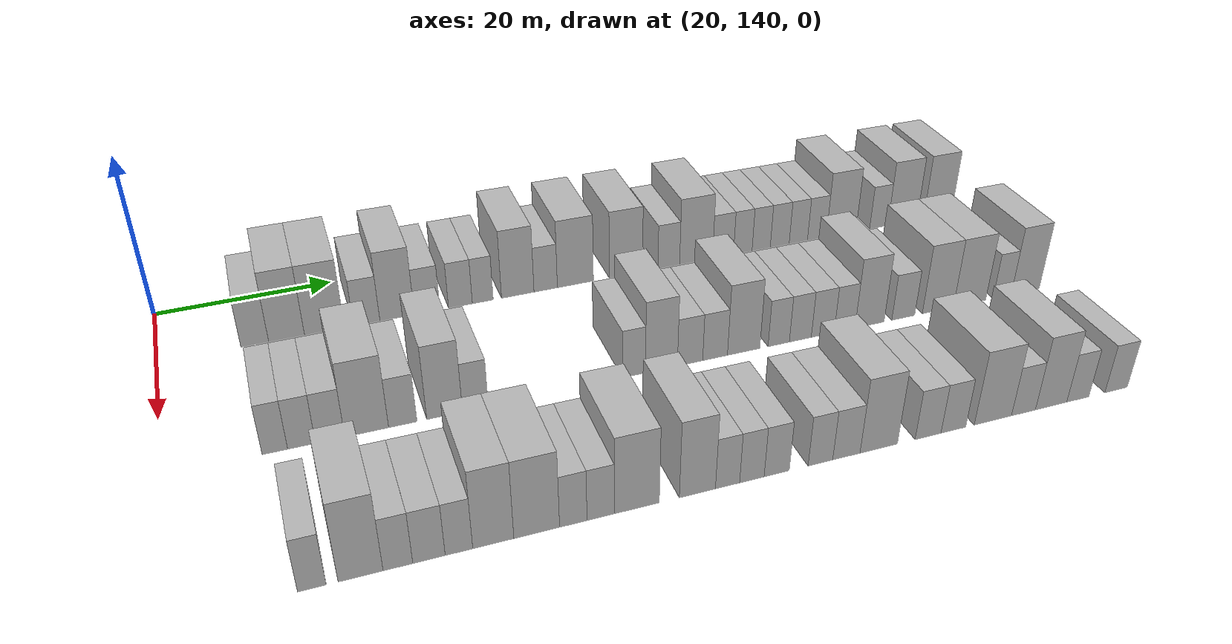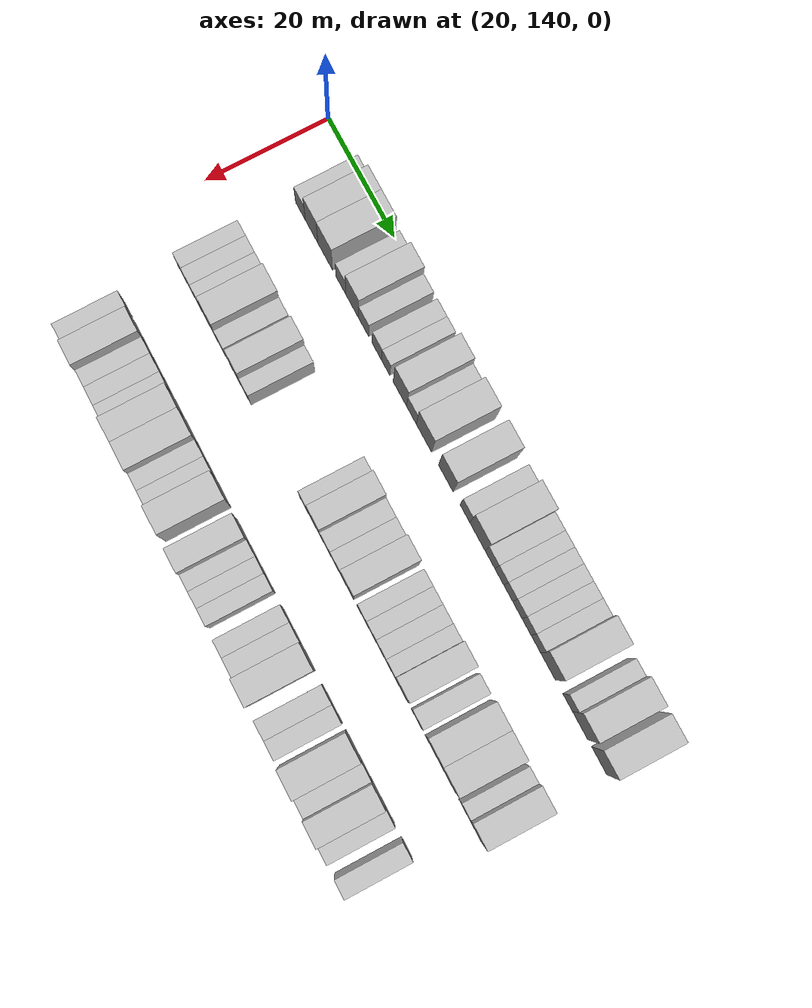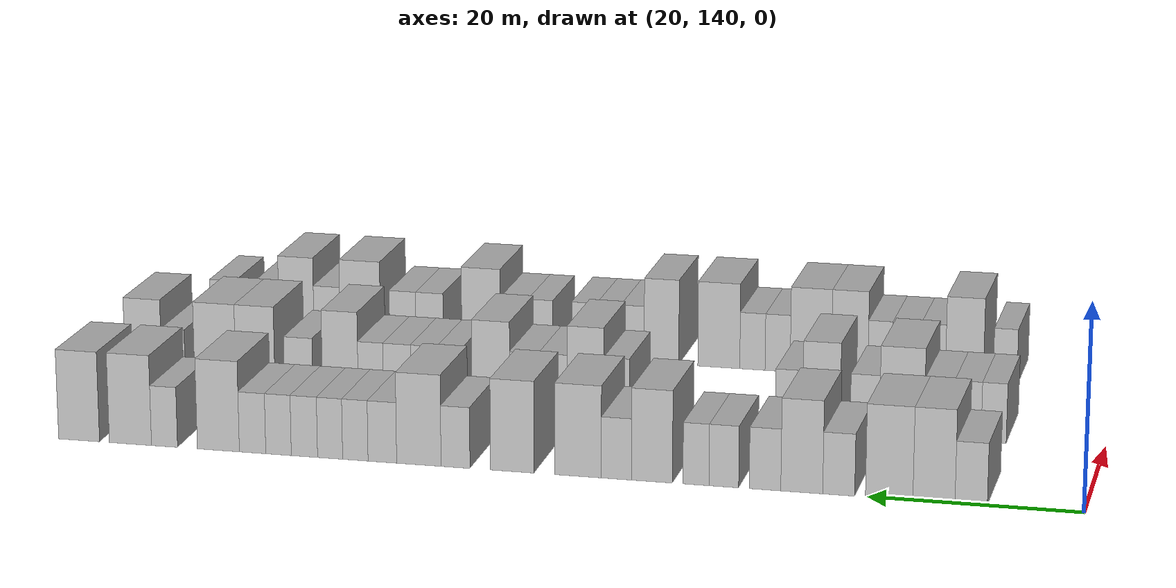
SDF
<sdf version="1.6">
 <world name="default">
  <model name="building_96">
   <static>1</static>
   <pose>25.0000 150.3777 0 0.000000 0.000000 0.000000</pose>
   <link name="link">
    <pose>0 0 3.00 0 0 0</pose>
    <collision name="collision"><geometry><box><size>10.0000 2.9793 6.0000</size></box></geometry></collision>
    <visual name="visual">
     <cast_shadows>0</cast_shadows>
     <geometry><box><size>10.0000 2.9793 6.0000</size></box></geometry>
     <material>
      <script>
       <uri>model://HANNAS_wall/materials/scripts</uri>
       <uri>model://HANNAS_wall/materials/textures</uri>
       <name>vrc/HANNAS_wall</name>
      </script>
     </material>
    </visual>
   </link>
  </model>
  <model name="building_97">
   <static>1</static>
   <pose>25.0000 153.8159 0 0.000000 0.000000 0.000000</pose>
   <link name="link">
    <pose>0 0 4.50 0 0 0</pose>
    <collision name="collision"><geometry><box><size>10.0000 3.8971 9.0000</size></box></geometry></collision>
    <visual name="visual">
     <cast_shadows>0</cast_shadows>
     <geometry><box><size>10.0000 3.8971 9.0000</size></box></geometry>
     <material>
      <script>
       <uri>model://HANNAS_wall/materials/scripts</uri>
       <uri>model://HANNAS_wall/materials/textures</uri>
       <name>vrc/HANNAS_wall</name>
      </script>
     </material>
    </visual>
   </link>
  </model>
  <model name="building_98">
   <static>1</static>
   <pose>25.0000 157.9704 0 0.000000 0.000000 0.000000</pose>
   <link name="link">
    <pose>0 0 4.50 0 0 0</pose>
    <collision name="collision"><geometry><box><size>10.0000 4.4120 9.0000</size></box></geometry></collision>
    <visual name="visual">
     <cast_shadows>0</cast_shadows>
     <geometry><box><size>10.0000 4.4120 9.0000</size></box></geometry>
     <material>
      <script>
       <uri>model://HANNAS_wall/materials/scripts</uri>
       <uri>model://HANNAS_wall/materials/textures</uri>
       <name>vrc/HANNAS_wall</name>
      </script>
     </material>
    </visual>
   </link>
  </model>
  <model name="building_99">
   <static>1</static>
   <pose>25.0000 162.6709 0 0.000000 0.000000 0.000000</pose>
   <link name="link">
    <pose>0 0 3.00 0 0 0</pose>
    <collision name="collision"><geometry><box><size>10.0000 2.9890 6.0000</size></box></geometry></collision>
    <visual name="visual">
     <cast_shadows>0</cast_shadows>
     <geometry><box><size>10.0000 2.9890 6.0000</size></box></geometry>
     <material>
      <script>
       <uri>model://HANNAS_wall/materials/scripts</uri>
       <uri>model://HANNAS_wall/materials/textures</uri>
       <name>vrc/HANNAS_wall</name>
      </script>
     </material>
    </visual>
   </link>
  </model>
  <model name="building_100">
   <static>1</static>
   <pose>25.0000 166.1352 0 0.000000 0.000000 0.000000</pose>
   <link name="link">
    <pose>0 0 4.50 0 0 0</pose>
    <collision name="collision"><geometry><box><size>10.0000 3.9394 9.0000</size></box></geometry></collision>
    <visual name="visual">
     <cast_shadows>0</cast_shadows>
     <geometry><box><size>10.0000 3.9394 9.0000</size></box></geometry>
     <material>
      <script>
       <uri>model://HANNAS_wall/materials/scripts</uri>
       <uri>model://HANNAS_wall/materials/textures</uri>
       <name>vrc/HANNAS_wall</name>
      </script>
     </material>
    </visual>
   </link>
  </model>
  <model name="building_101">
   <static>1</static>
   <pose>25.0000 169.5913 0 0.000000 0.000000 0.000000</pose>
   <link name="link">
    <pose>0 0 3.00 0 0 0</pose>
    <collision name="collision"><geometry><box><size>10.0000 2.9728 6.0000</size></box></geometry></collision>
    <visual name="visual">
     <cast_shadows>0</cast_shadows>
     <geometry><box><size>10.0000 2.9728 6.0000</size></box></geometry>
     <material>
      <script>
       <uri>model://HANNAS_wall/materials/scripts</uri>
       <uri>model://HANNAS_wall/materials/textures</uri>
       <name>vrc/HANNAS_wall</name>
      </script>
     </material>
    </visual>
   </link>
  </model>
  <model name="building_102">
   <static>1</static>
   <pose>25.0000 173.4811 0 0.000000 0.000000 0.000000</pose>
   <link name="link">
    <pose>0 0 3.00 0 0 0</pose>
    <collision name="collision"><geometry><box><size>10.0000 2.8069 6.0000</size></box></geometry></collision>
    <visual name="visual">
     <cast_shadows>0</cast_shadows>
     <geometry><box><size>10.0000 2.8069 6.0000</size></box></geometry>
     <material>
      <script>
       <uri>model://HANNAS_wall/materials/scripts</uri>
       <uri>model://HANNAS_wall/materials/textures</uri>
       <name>vrc/HANNAS_wall</name>
      </script>
     </material>
    </visual>
   </link>
  </model>
  <model name="building_103">
   <static>1</static>
   <pose>25.0000 176.1226 0 0.000000 0.000000 0.000000</pose>
   <link name="link">
    <pose>0 0 3.00 0 0 0</pose>
    <collision name="collision"><geometry><box><size>10.0000 2.4760 6.0000</size></box></geometry></collision>
    <visual name="visual">
     <cast_shadows>0</cast_shadows>
     <geometry><box><size>10.0000 2.4760 6.0000</size></box></geometry>
     <material>
      <script>
       <uri>model://HANNAS_wall/materials/scripts</uri>
       <uri>model://HANNAS_wall/materials/textures</uri>
       <name>vrc/HANNAS_wall</name>
      </script>
     </material>
    </visual>
   </link>
  </model>
  <model name="building_104">
   <static>1</static>
   <pose>25.0000 180.3261 0 0.000000 0.000000 0.000000</pose>
   <link name="link">
    <pose>0 0 4.50 0 0 0</pose>
    <collision name="collision"><geometry><box><size>10.0000 3.9310 9.0000</size></box></geometry></collision>
    <visual name="visual">
     <cast_shadows>0</cast_shadows>
     <geometry><box><size>10.0000 3.9310 9.0000</size></box></geometry>
     <material>
      <script>
       <uri>model://HANNAS_wall/materials/scripts</uri>
       <uri>model://HANNAS_wall/materials/textures</uri>
       <name>vrc/HANNAS_wall</name>
      </script>
     </material>
    </visual>
   </link>
  </model>
  <model name="building_105">
   <static>1</static>
   <pose>25.0000 183.7257 0 0.000000 0.000000 0.000000</pose>
   <link name="link">
    <pose>0 0 3.00 0 0 0</pose>
    <collision name="collision"><geometry><box><size>10.0000 2.8682 6.0000</size></box></geometry></collision>
    <visual name="visual">
     <cast_shadows>0</cast_shadows>
     <geometry><box><size>10.0000 2.8682 6.0000</size></box></geometry>
     <material>
      <script>
       <uri>model://HANNAS_wall/materials/scripts</uri>
       <uri>model://HANNAS_wall/materials/textures</uri>
       <name>vrc/HANNAS_wall</name>
      </script>
     </material>
    </visual>
   </link>
  </model>
  <model name="building_106">
   <static>1</static>
   <pose>25.0000 187.4045 0 0.000000 0.000000 0.000000</pose>
   <link name="link">
    <pose>0 0 4.50 0 0 0</pose>
    <collision name="collision"><geometry><box><size>10.0000 4.4895 9.0000</size></box></geometry></collision>
    <visual name="visual">
     <cast_shadows>0</cast_shadows>
     <geometry><box><size>10.0000 4.4895 9.0000</size></box></geometry>
     <material>
      <script>
       <uri>model://HANNAS_wall/materials/scripts</uri>
       <uri>model://HANNAS_wall/materials/textures</uri>
       <name>vrc/HANNAS_wall</name>
      </script>
     </material>
    </visual>
   </link>
  </model>
  <model name="building_107">
   <static>1</static>
   <pose>25.0000 193.7643 0 0.000000 0.000000 0.000000</pose>
   <link name="link">
    <pose>0 0 4.50 0 0 0</pose>
    <collision name="collision"><geometry><box><size>10.0000 4.2302 9.0000</size></box></geometry></collision>
    <visual name="visual">
     <cast_shadows>0</cast_shadows>
     <geometry><box><size>10.0000 4.2302 9.0000</size></box></geometry>
     <material>
      <script>
       <uri>model://HANNAS_wall/materials/scripts</uri>
       <uri>model://HANNAS_wall/materials/textures</uri>
       <name>vrc/HANNAS_wall</name>
      </script>
     </material>
    </visual>
   </link>
  </model>
  <model name="building_108">
   <static>1</static>
   <pose>25.0000 199.2917 0 0.000000 0.000000 0.000000</pose>
   <link name="link">
    <pose>0 0 3.00 0 0 0</pose>
    <collision name="collision"><geometry><box><size>10.0000 2.8246 6.0000</size></box></geometry></collision>
    <visual name="visual">
     <cast_shadows>0</cast_shadows>
     <geometry><box><size>10.0000 2.8246 6.0000</size></box></geometry>
     <material>
      <script>
       <uri>model://HANNAS_wall/materials/scripts</uri>
       <uri>model://HANNAS_wall/materials/textures</uri>
       <name>vrc/HANNAS_wall</name>
      </script>
     </material>
    </visual>
   </link>
  </model>
  <model name="building_109">
   <static>1</static>
   <pose>25.0000 202.8836 0 0.000000 0.000000 0.000000</pose>
   <link name="link">
    <pose>0 0 4.50 0 0 0</pose>
    <collision name="collision"><geometry><box><size>10.0000 4.3591 9.0000</size></box></geometry></collision>
    <visual name="visual">
     <cast_shadows>0</cast_shadows>
     <geometry><box><size>10.0000 4.3591 9.0000</size></box></geometry>
     <material>
      <script>
       <uri>model://HANNAS_wall/materials/scripts</uri>
       <uri>model://HANNAS_wall/materials/textures</uri>
       <name>vrc/HANNAS_wall</name>
      </script>
     </material>
    </visual>
   </link>
  </model>
  <model name="building_110">
   <static>1</static>
   <pose>25.0000 206.4705 0 0.000000 0.000000 0.000000</pose>
   <link name="link">
    <pose>0 0 3.00 0 0 0</pose>
    <collision name="collision"><geometry><box><size>10.0000 2.8148 6.0000</size></box></geometry></collision>
    <visual name="visual">
     <cast_shadows>0</cast_shadows>
     <geometry><box><size>10.0000 2.8148 6.0000</size></box></geometry>
     <material>
      <script>
       <uri>model://HANNAS_wall/materials/scripts</uri>
       <uri>model://HANNAS_wall/materials/textures</uri>
       <name>vrc/HANNAS_wall</name>
      </script>
     </material>
    </visual>
   </link>
  </model>
  <model name="building_111">
   <static>1</static>
   <pose>25.0000 209.1346 0 0.000000 0.000000 0.000000</pose>
   <link name="link">
    <pose>0 0 3.00 0 0 0</pose>
    <collision name="collision"><geometry><box><size>10.0000 2.5133 6.0000</size></box></geometry></collision>
    <visual name="visual">
     <cast_shadows>0</cast_shadows>
     <geometry><box><size>10.0000 2.5133 6.0000</size></box></geometry>
     <material>
      <script>
       <uri>model://HANNAS_wall/materials/scripts</uri>
       <uri>model://HANNAS_wall/materials/textures</uri>
       <name>vrc/HANNAS_wall</name>
      </script>
     </material>
    </visual>
   </link>
  </model>
  <model name="building_112">
   <static>1</static>
   <pose>25.0000 211.6346 0 0.000000 0.000000 0.000000</pose>
   <link name="link">
    <pose>0 0 3.00 0 0 0</pose>
    <collision name="collision"><geometry><box><size>10.0000 2.4867 6.0000</size></box></geometry></collision>
    <visual name="visual">
     <cast_shadows>0</cast_shadows>
     <geometry><box><size>10.0000 2.4867 6.0000</size></box></geometry>
     <material>
      <script>
       <uri>model://HANNAS_wall/materials/scripts</uri>
       <uri>model://HANNAS_wall/materials/textures</uri>
       <name>vrc/HANNAS_wall</name>
      </script>
     </material>
    </visual>
   </link>
  </model>
  <model name="building_113">
   <static>1</static>
   <pose>25.0000 214.1813 0 0.000000 0.000000 0.000000</pose>
   <link name="link">
    <pose>0 0 3.00 0 0 0</pose>
    <collision name="collision"><geometry><box><size>10.0000 2.6068 6.0000</size></box></geometry></collision>
    <visual name="visual">
     <cast_shadows>0</cast_shadows>
     <geometry><box><size>10.0000 2.6068 6.0000</size></box></geometry>
     <material>
      <script>
       <uri>model://HANNAS_wall/materials/scripts</uri>
       <uri>model://HANNAS_wall/materials/textures</uri>
       <name>vrc/HANNAS_wall</name>
      </script>
     </material>
    </visual>
   </link>
  </model>
  <model name="building_114">
   <static>1</static>
   <pose>25.0000 216.7577 0 0.000000 0.000000 0.000000</pose>
   <link name="link">
    <pose>0 0 3.00 0 0 0</pose>
    <collision name="collision"><geometry><box><size>10.0000 2.5459 6.0000</size></box></geometry></collision>
    <visual name="visual">
     <cast_shadows>0</cast_shadows>
     <geometry><box><size>10.0000 2.5459 6.0000</size></box></geometry>
     <material>
      <script>
       <uri>model://HANNAS_wall/materials/scripts</uri>
       <uri>model://HANNAS_wall/materials/textures</uri>
       <name>vrc/HANNAS_wall</name>
      </script>
     </material>
    </visual>
   </link>
  </model>
  <model name="building_115">
   <static>1</static>
   <pose>25.0000 219.3499 0 0.000000 0.000000 0.000000</pose>
   <link name="link">
    <pose>0 0 3.00 0 0 0</pose>
    <collision name="collision"><geometry><box><size>10.0000 2.6386 6.0000</size></box></geometry></collision>
    <visual name="visual">
     <cast_shadows>0</cast_shadows>
     <geometry><box><size>10.0000 2.6386 6.0000</size></box></geometry>
     <material>
      <script>
       <uri>model://HANNAS_wall/materials/scripts</uri>
       <uri>model://HANNAS_wall/materials/textures</uri>
       <name>vrc/HANNAS_wall</name>
      </script>
     </material>
    </visual>
   </link>
  </model>
  <model name="building_116">
   <static>1</static>
   <pose>25.0000 222.7768 0 0.000000 0.000000 0.000000</pose>
   <link name="link">
    <pose>0 0 4.50 0 0 0</pose>
    <collision name="collision"><geometry><box><size>10.0000 4.2152 9.0000</size></box></geometry></collision>
    <visual name="visual">
     <cast_shadows>0</cast_shadows>
     <geometry><box><size>10.0000 4.2152 9.0000</size></box></geometry>
     <material>
      <script>
       <uri>model://HANNAS_wall/materials/scripts</uri>
       <uri>model://HANNAS_wall/materials/textures</uri>
       <name>vrc/HANNAS_wall</name>
      </script>
     </material>
    </visual>
   </link>
  </model>
  <model name="building_117">
   <static>1</static>
   <pose>25.0000 228.2007 0 0.000000 0.000000 0.000000</pose>
   <link name="link">
    <pose>0 0 3.00 0 0 0</pose>
    <collision name="collision"><geometry><box><size>10.0000 2.6326 6.0000</size></box></geometry></collision>
    <visual name="visual">
     <cast_shadows>0</cast_shadows>
     <geometry><box><size>10.0000 2.6326 6.0000</size></box></geometry>
     <material>
      <script>
       <uri>model://HANNAS_wall/materials/scripts</uri>
       <uri>model://HANNAS_wall/materials/textures</uri>
       <name>vrc/HANNAS_wall</name>
      </script>
     </material>
    </visual>
   </link>
  </model>
  <model name="building_118">
   <static>1</static>
   <pose>25.0000 231.6531 0 0.000000 0.000000 0.000000</pose>
   <link name="link">
    <pose>0 0 4.50 0 0 0</pose>
    <collision name="collision"><geometry><box><size>10.0000 4.2723 9.0000</size></box></geometry></collision>
    <visual name="visual">
     <cast_shadows>0</cast_shadows>
     <geometry><box><size>10.0000 4.2723 9.0000</size></box></geometry>
     <material>
      <script>
       <uri>model://HANNAS_wall/materials/scripts</uri>
       <uri>model://HANNAS_wall/materials/textures</uri>
       <name>vrc/HANNAS_wall</name>
      </script>
     </material>
    </visual>
   </link>
  </model>
  <model name="building_119">
   <static>1</static>
   <pose>25.0000 236.8753 0 0.000000 0.000000 0.000000</pose>
   <link name="link">
    <pose>0 0 4.50 0 0 0</pose>
    <collision name="collision"><geometry><box><size>10.0000 4.1721 9.0000</size></box></geometry></collision>
    <visual name="visual">
     <cast_shadows>0</cast_shadows>
     <geometry><box><size>10.0000 4.1721 9.0000</size></box></geometry>
     <material>
      <script>
       <uri>model://HANNAS_wall/materials/scripts</uri>
       <uri>model://HANNAS_wall/materials/textures</uri>
       <name>vrc/HANNAS_wall</name>
      </script>
     </material>
    </visual>
   </link>
  </model>
  <model name="building_220">
   <static>1</static>
   <pose>44.0000 150.6885 0 0.000000 0.000000 0.000000</pose>
   <link name="link">
    <pose>0 0 3.00 0 0 0</pose>
    <collision name="collision"><geometry><box><size>10.0000 2.4358 6.0000</size></box></geometry></collision>
    <visual name="visual">
     <cast_shadows>0</cast_shadows>
     <geometry><box><size>10.0000 2.4358 6.0000</size></box></geometry>
     <material>
      <script>
       <uri>model://HANNAS_wall/materials/scripts</uri>
       <uri>model://HANNAS_wall/materials/textures</uri>
       <name>vrc/HANNAS_wall</name>
      </script>
     </material>
    </visual>
   </link>
  </model>
  <model name="building_221">
   <static>1</static>
   <pose>44.0000 153.2478 0 0.000000 0.000000 0.000000</pose>
   <link name="link">
    <pose>0 0 3.00 0 0 0</pose>
    <collision name="collision"><geometry><box><size>10.0000 2.6827 6.0000</size></box></geometry></collision>
    <visual name="visual">
     <cast_shadows>0</cast_shadows>
     <geometry><box><size>10.0000 2.6827 6.0000</size></box></geometry>
     <material>
      <script>
       <uri>model://HANNAS_wall/materials/scripts</uri>
       <uri>model://HANNAS_wall/materials/textures</uri>
       <name>vrc/HANNAS_wall</name>
      </script>
     </material>
    </visual>
   </link>
  </model>
  <model name="building_222">
   <static>1</static>
   <pose>44.0000 156.0177 0 0.000000 0.000000 0.000000</pose>
   <link name="link">
    <pose>0 0 3.00 0 0 0</pose>
    <collision name="collision"><geometry><box><size>10.0000 2.8572 6.0000</size></box></geometry></collision>
    <visual name="visual">
     <cast_shadows>0</cast_shadows>
     <geometry><box><size>10.0000 2.8572 6.0000</size></box></geometry>
     <material>
      <script>
       <uri>model://HANNAS_wall/materials/scripts</uri>
       <uri>model://HANNAS_wall/materials/textures</uri>
       <name>vrc/HANNAS_wall</name>
      </script>
     </material>
    </visual>
   </link>
  </model>
  <model name="building_223">
   <static>1</static>
   <pose>44.0000 159.6269 0 0.000000 0.000000 0.000000</pose>
   <link name="link">
    <pose>0 0 4.50 0 0 0</pose>
    <collision name="collision"><geometry><box><size>10.0000 4.3612 9.0000</size></box></geometry></collision>
    <visual name="visual">
     <cast_shadows>0</cast_shadows>
     <geometry><box><size>10.0000 4.3612 9.0000</size></box></geometry>
     <material>
      <script>
       <uri>model://HANNAS_wall/materials/scripts</uri>
       <uri>model://HANNAS_wall/materials/textures</uri>
       <name>vrc/HANNAS_wall</name>
      </script>
     </material>
    </visual>
   </link>
  </model>
  <model name="building_224">
   <static>1</static>
   <pose>44.0000 163.2405 0 0.000000 0.000000 0.000000</pose>
   <link name="link">
    <pose>0 0 3.00 0 0 0</pose>
    <collision name="collision"><geometry><box><size>10.0000 2.8660 6.0000</size></box></geometry></collision>
    <visual name="visual">
     <cast_shadows>0</cast_shadows>
     <geometry><box><size>10.0000 2.8660 6.0000</size></box></geometry>
     <material>
      <script>
       <uri>model://HANNAS_wall/materials/scripts</uri>
       <uri>model://HANNAS_wall/materials/textures</uri>
       <name>vrc/HANNAS_wall</name>
      </script>
     </material>
    </visual>
   </link>
  </model>
  <model name="building_225">
   <static>1</static>
   <pose>44.0000 167.5182 0 0.000000 0.000000 0.000000</pose>
   <link name="link">
    <pose>0 0 4.50 0 0 0</pose>
    <collision name="collision"><geometry><box><size>10.0000 3.6894 9.0000</size></box></geometry></collision>
    <visual name="visual">
     <cast_shadows>0</cast_shadows>
     <geometry><box><size>10.0000 3.6894 9.0000</size></box></geometry>
     <material>
      <script>
       <uri>model://HANNAS_wall/materials/scripts</uri>
       <uri>model://HANNAS_wall/materials/textures</uri>
       <name>vrc/HANNAS_wall</name>
      </script>
     </material>
    </visual>
   </link>
  </model>
  <model name="building_226">
   <static>1</static>
   <pose>44.0000 170.7061 0 0.000000 0.000000 0.000000</pose>
   <link name="link">
    <pose>0 0 3.00 0 0 0</pose>
    <collision name="collision"><geometry><box><size>10.0000 2.6864 6.0000</size></box></geometry></collision>
    <visual name="visual">
     <cast_shadows>0</cast_shadows>
     <geometry><box><size>10.0000 2.6864 6.0000</size></box></geometry>
     <material>
      <script>
       <uri>model://HANNAS_wall/materials/scripts</uri>
       <uri>model://HANNAS_wall/materials/textures</uri>
       <name>vrc/HANNAS_wall</name>
      </script>
     </material>
    </visual>
   </link>
  </model>
  <model name="building_227">
   <static>1</static>
   <pose>44.0000 187.9278 0 0.000000 0.000000 0.000000</pose>
   <link name="link">
    <pose>0 0 3.00 0 0 0</pose>
    <collision name="collision"><geometry><box><size>10.0000 2.5857 6.0000</size></box></geometry></collision>
    <visual name="visual">
     <cast_shadows>0</cast_shadows>
     <geometry><box><size>10.0000 2.5857 6.0000</size></box></geometry>
     <material>
      <script>
       <uri>model://HANNAS_wall/materials/scripts</uri>
       <uri>model://HANNAS_wall/materials/textures</uri>
       <name>vrc/HANNAS_wall</name>
      </script>
     </material>
    </visual>
   </link>
  </model>
  <model name="building_228">
   <static>1</static>
   <pose>44.0000 191.0551 0 0.000000 0.000000 0.000000</pose>
   <link name="link">
    <pose>0 0 4.50 0 0 0</pose>
    <collision name="collision"><geometry><box><size>10.0000 3.6689 9.0000</size></box></geometry></collision>
    <visual name="visual">
     <cast_shadows>0</cast_shadows>
     <geometry><box><size>10.0000 3.6689 9.0000</size></box></geometry>
     <material>
      <script>
       <uri>model://HANNAS_wall/materials/scripts</uri>
       <uri>model://HANNAS_wall/materials/textures</uri>
       <name>vrc/HANNAS_wall</name>
      </script>
     </material>
    </visual>
   </link>
  </model>
  <model name="building_229">
   <static>1</static>
   <pose>44.0000 194.3600 0 0.000000 0.000000 0.000000</pose>
   <link name="link">
    <pose>0 0 3.00 0 0 0</pose>
    <collision name="collision"><geometry><box><size>10.0000 2.9407 6.0000</size></box></geometry></collision>
    <visual name="visual">
     <cast_shadows>0</cast_shadows>
     <geometry><box><size>10.0000 2.9407 6.0000</size></box></geometry>
     <material>
      <script>
       <uri>model://HANNAS_wall/materials/scripts</uri>
       <uri>model://HANNAS_wall/materials/textures</uri>
       <name>vrc/HANNAS_wall</name>
      </script>
     </material>
    </visual>
   </link>
  </model>
  <model name="building_230">
   <static>1</static>
   <pose>44.0000 197.2884 0 0.000000 0.000000 0.000000</pose>
   <link name="link">
    <pose>0 0 3.00 0 0 0</pose>
    <collision name="collision"><geometry><box><size>10.0000 2.9160 6.0000</size></box></geometry></collision>
    <visual name="visual">
     <cast_shadows>0</cast_shadows>
     <geometry><box><size>10.0000 2.9160 6.0000</size></box></geometry>
     <material>
      <script>
       <uri>model://HANNAS_wall/materials/scripts</uri>
       <uri>model://HANNAS_wall/materials/textures</uri>
       <name>vrc/HANNAS_wall</name>
      </script>
     </material>
    </visual>
   </link>
  </model>
  <model name="building_231">
   <static>1</static>
   <pose>44.0000 200.6775 0 0.000000 0.000000 0.000000</pose>
   <link name="link">
    <pose>0 0 4.50 0 0 0</pose>
    <collision name="collision"><geometry><box><size>10.0000 3.8623 9.0000</size></box></geometry></collision>
    <visual name="visual">
     <cast_shadows>0</cast_shadows>
     <geometry><box><size>10.0000 3.8623 9.0000</size></box></geometry>
     <material>
      <script>
       <uri>model://HANNAS_wall/materials/scripts</uri>
       <uri>model://HANNAS_wall/materials/textures</uri>
       <name>vrc/HANNAS_wall</name>
      </script>
     </material>
    </visual>
   </link>
  </model>
  <model name="building_232">
   <static>1</static>
   <pose>44.0000 204.9009 0 0.000000 0.000000 0.000000</pose>
   <link name="link">
    <pose>0 0 3.00 0 0 0</pose>
    <collision name="collision"><geometry><box><size>10.0000 2.5844 6.0000</size></box></geometry></collision>
    <visual name="visual">
     <cast_shadows>0</cast_shadows>
     <geometry><box><size>10.0000 2.5844 6.0000</size></box></geometry>
     <material>
      <script>
       <uri>model://HANNAS_wall/materials/scripts</uri>
       <uri>model://HANNAS_wall/materials/textures</uri>
       <name>vrc/HANNAS_wall</name>
      </script>
     </material>
    </visual>
   </link>
  </model>
  <model name="building_233">
   <static>1</static>
   <pose>44.0000 207.5401 0 0.000000 0.000000 0.000000</pose>
   <link name="link">
    <pose>0 0 3.00 0 0 0</pose>
    <collision name="collision"><geometry><box><size>10.0000 2.6942 6.0000</size></box></geometry></collision>
    <visual name="visual">
     <cast_shadows>0</cast_shadows>
     <geometry><box><size>10.0000 2.6942 6.0000</size></box></geometry>
     <material>
      <script>
       <uri>model://HANNAS_wall/materials/scripts</uri>
       <uri>model://HANNAS_wall/materials/textures</uri>
       <name>vrc/HANNAS_wall</name>
      </script>
     </material>
    </visual>
   </link>
  </model>
  <model name="building_234">
   <static>1</static>
   <pose>44.0000 210.3095 0 0.000000 0.000000 0.000000</pose>
   <link name="link">
    <pose>0 0 3.00 0 0 0</pose>
    <collision name="collision"><geometry><box><size>10.0000 2.8445 6.0000</size></box></geometry></collision>
    <visual name="visual">
     <cast_shadows>0</cast_shadows>
     <geometry><box><size>10.0000 2.8445 6.0000</size></box></geometry>
     <material>
      <script>
       <uri>model://HANNAS_wall/materials/scripts</uri>
       <uri>model://HANNAS_wall/materials/textures</uri>
       <name>vrc/HANNAS_wall</name>
      </script>
     </material>
    </visual>
   </link>
  </model>
  <model name="building_235">
   <static>1</static>
   <pose>44.0000 213.0400 0 0.000000 0.000000 0.000000</pose>
   <link name="link">
    <pose>0 0 3.00 0 0 0</pose>
    <collision name="collision"><geometry><box><size>10.0000 2.6165 6.0000</size></box></geometry></collision>
    <visual name="visual">
     <cast_shadows>0</cast_shadows>
     <geometry><box><size>10.0000 2.6165 6.0000</size></box></geometry>
     <material>
      <script>
       <uri>model://HANNAS_wall/materials/scripts</uri>
       <uri>model://HANNAS_wall/materials/textures</uri>
       <name>vrc/HANNAS_wall</name>
      </script>
     </material>
    </visual>
   </link>
  </model>
  <model name="building_236">
   <static>1</static>
   <pose>44.0000 216.2033 0 0.000000 0.000000 0.000000</pose>
   <link name="link">
    <pose>0 0 4.50 0 0 0</pose>
    <collision name="collision"><geometry><box><size>10.0000 3.7101 9.0000</size></box></geometry></collision>
    <visual name="visual">
     <cast_shadows>0</cast_shadows>
     <geometry><box><size>10.0000 3.7101 9.0000</size></box></geometry>
     <material>
      <script>
       <uri>model://HANNAS_wall/materials/scripts</uri>
       <uri>model://HANNAS_wall/materials/textures</uri>
       <name>vrc/HANNAS_wall</name>
      </script>
     </material>
    </visual>
   </link>
  </model>
  <model name="building_237">
   <static>1</static>
   <pose>44.0000 220.5430 0 0.000000 0.000000 0.000000</pose>
   <link name="link">
    <pose>0 0 3.00 0 0 0</pose>
    <collision name="collision"><geometry><box><size>10.0000 2.9693 6.0000</size></box></geometry></collision>
    <visual name="visual">
     <cast_shadows>0</cast_shadows>
     <geometry><box><size>10.0000 2.9693 6.0000</size></box></geometry>
     <material>
      <script>
       <uri>model://HANNAS_wall/materials/scripts</uri>
       <uri>model://HANNAS_wall/materials/textures</uri>
       <name>vrc/HANNAS_wall</name>
      </script>
     </material>
    </visual>
   </link>
  </model>
  <model name="building_238">
   <static>1</static>
   <pose>44.0000 225.0824 0 0.000000 0.000000 0.000000</pose>
   <link name="link">
    <pose>0 0 4.50 0 0 0</pose>
    <collision name="collision"><geometry><box><size>10.0000 4.1094 9.0000</size></box></geometry></collision>
    <visual name="visual">
     <cast_shadows>0</cast_shadows>
     <geometry><box><size>10.0000 4.1094 9.0000</size></box></geometry>
     <material>
      <script>
       <uri>model://HANNAS_wall/materials/scripts</uri>
       <uri>model://HANNAS_wall/materials/textures</uri>
       <name>vrc/HANNAS_wall</name>
      </script>
     </material>
    </visual>
   </link>
  </model>
  <model name="building_239">
   <static>1</static>
   <pose>44.0000 229.3063 0 0.000000 0.000000 0.000000</pose>
   <link name="link">
    <pose>0 0 4.50 0 0 0</pose>
    <collision name="collision"><geometry><box><size>10.0000 4.3385 9.0000</size></box></geometry></collision>
    <visual name="visual">
     <cast_shadows>0</cast_shadows>
     <geometry><box><size>10.0000 4.3385 9.0000</size></box></geometry>
     <material>
      <script>
       <uri>model://HANNAS_wall/materials/scripts</uri>
       <uri>model://HANNAS_wall/materials/textures</uri>
       <name>vrc/HANNAS_wall</name>
      </script>
     </material>
    </visual>
   </link>
  </model>
  <model name="building_240">
   <static>1</static>
   <pose>44.0000 233.7132 0 0.000000 0.000000 0.000000</pose>
   <link name="link">
    <pose>0 0 3.00 0 0 0</pose>
    <collision name="collision"><geometry><box><size>10.0000 2.4752 6.0000</size></box></geometry></collision>
    <visual name="visual">
     <cast_shadows>0</cast_shadows>
     <geometry><box><size>10.0000 2.4752 6.0000</size></box></geometry>
     <material>
      <script>
       <uri>model://HANNAS_wall/materials/scripts</uri>
       <uri>model://HANNAS_wall/materials/textures</uri>
       <name>vrc/HANNAS_wall</name>
      </script>
     </material>
    </visual>
   </link>
  </model>
  <model name="building_241">
   <static>1</static>
   <pose>44.0000 236.8930 0 0.000000 0.000000 0.000000</pose>
   <link name="link">
    <pose>0 0 4.50 0 0 0</pose>
    <collision name="collision"><geometry><box><size>10.0000 3.8843 9.0000</size></box></geometry></collision>
    <visual name="visual">
     <cast_shadows>0</cast_shadows>
     <geometry><box><size>10.0000 3.8843 9.0000</size></box></geometry>
     <material>
      <script>
       <uri>model://HANNAS_wall/materials/scripts</uri>
       <uri>model://HANNAS_wall/materials/textures</uri>
       <name>vrc/HANNAS_wall</name>
      </script>
     </material>
    </visual>
   </link>
  </model>
  <model name="building_328">
   <static>1</static>
   <pose>63.0000 151.9104 0 0.000000 0.000000 0.000000</pose>
   <link name="link">
    <pose>0 0 3.00 0 0 0</pose>
    <collision name="collision"><geometry><box><size>10.0000 2.4151 6.0000</size></box></geometry></collision>
    <visual name="visual">
     <cast_shadows>0</cast_shadows>
     <geometry><box><size>10.0000 2.4151 6.0000</size></box></geometry>
     <material>
      <script>
       <uri>model://HANNAS_wall/materials/scripts</uri>
       <uri>model://HANNAS_wall/materials/textures</uri>
       <name>vrc/HANNAS_wall</name>
      </script>
     </material>
    </visual>
   </link>
  </model>
  <model name="building_329">
   <static>1</static>
   <pose>63.0000 156.0496 0 0.000000 0.000000 0.000000</pose>
   <link name="link">
    <pose>0 0 4.50 0 0 0</pose>
    <collision name="collision"><geometry><box><size>10.0000 3.8632 9.0000</size></box></geometry></collision>
    <visual name="visual">
     <cast_shadows>0</cast_shadows>
     <geometry><box><size>10.0000 3.8632 9.0000</size></box></geometry>
     <material>
      <script>
       <uri>model://HANNAS_wall/materials/scripts</uri>
       <uri>model://HANNAS_wall/materials/textures</uri>
       <name>vrc/HANNAS_wall</name>
      </script>
     </material>
    </visual>
   </link>
  </model>
  <model name="building_330">
   <static>1</static>
   <pose>63.0000 159.2772 0 0.000000 0.000000 0.000000</pose>
   <link name="link">
    <pose>0 0 3.00 0 0 0</pose>
    <collision name="collision"><geometry><box><size>10.0000 2.5920 6.0000</size></box></geometry></collision>
    <visual name="visual">
     <cast_shadows>0</cast_shadows>
     <geometry><box><size>10.0000 2.5920 6.0000</size></box></geometry>
     <material>
      <script>
       <uri>model://HANNAS_wall/materials/scripts</uri>
       <uri>model://HANNAS_wall/materials/textures</uri>
       <name>vrc/HANNAS_wall</name>
      </script>
     </material>
    </visual>
   </link>
  </model>
  <model name="building_331">
   <static>1</static>
   <pose>63.0000 162.0077 0 0.000000 0.000000 0.000000</pose>
   <link name="link">
    <pose>0 0 3.00 0 0 0</pose>
    <collision name="collision"><geometry><box><size>10.0000 2.8688 6.0000</size></box></geometry></collision>
    <visual name="visual">
     <cast_shadows>0</cast_shadows>
     <geometry><box><size>10.0000 2.8688 6.0000</size></box></geometry>
     <material>
      <script>
       <uri>model://HANNAS_wall/materials/scripts</uri>
       <uri>model://HANNAS_wall/materials/textures</uri>
       <name>vrc/HANNAS_wall</name>
      </script>
     </material>
    </visual>
   </link>
  </model>
  <model name="building_332">
   <static>1</static>
   <pose>63.0000 164.6801 0 0.000000 0.000000 0.000000</pose>
   <link name="link">
    <pose>0 0 3.00 0 0 0</pose>
    <collision name="collision"><geometry><box><size>10.0000 2.4760 6.0000</size></box></geometry></collision>
    <visual name="visual">
     <cast_shadows>0</cast_shadows>
     <geometry><box><size>10.0000 2.4760 6.0000</size></box></geometry>
     <material>
      <script>
       <uri>model://HANNAS_wall/materials/scripts</uri>
       <uri>model://HANNAS_wall/materials/textures</uri>
       <name>vrc/HANNAS_wall</name>
      </script>
     </material>
    </visual>
   </link>
  </model>
  <model name="building_333">
   <static>1</static>
   <pose>63.0000 167.7920 0 0.000000 0.000000 0.000000</pose>
   <link name="link">
    <pose>0 0 4.50 0 0 0</pose>
    <collision name="collision"><geometry><box><size>10.0000 3.7478 9.0000</size></box></geometry></collision>
    <visual name="visual">
     <cast_shadows>0</cast_shadows>
     <geometry><box><size>10.0000 3.7478 9.0000</size></box></geometry>
     <material>
      <script>
       <uri>model://HANNAS_wall/materials/scripts</uri>
       <uri>model://HANNAS_wall/materials/textures</uri>
       <name>vrc/HANNAS_wall</name>
      </script>
     </material>
    </visual>
   </link>
  </model>
  <model name="building_334">
   <static>1</static>
   <pose>63.0000 171.7984 0 0.000000 0.000000 0.000000</pose>
   <link name="link">
    <pose>0 0 4.50 0 0 0</pose>
    <collision name="collision"><geometry><box><size>10.0000 4.2650 9.0000</size></box></geometry></collision>
    <visual name="visual">
     <cast_shadows>0</cast_shadows>
     <geometry><box><size>10.0000 4.2650 9.0000</size></box></geometry>
     <material>
      <script>
       <uri>model://HANNAS_wall/materials/scripts</uri>
       <uri>model://HANNAS_wall/materials/textures</uri>
       <name>vrc/HANNAS_wall</name>
      </script>
     </material>
    </visual>
   </link>
  </model>
  <model name="building_335">
   <static>1</static>
   <pose>63.0000 175.2333 0 0.000000 0.000000 0.000000</pose>
   <link name="link">
    <pose>0 0 3.00 0 0 0</pose>
    <collision name="collision"><geometry><box><size>10.0000 2.6048 6.0000</size></box></geometry></collision>
    <visual name="visual">
     <cast_shadows>0</cast_shadows>
     <geometry><box><size>10.0000 2.6048 6.0000</size></box></geometry>
     <material>
      <script>
       <uri>model://HANNAS_wall/materials/scripts</uri>
       <uri>model://HANNAS_wall/materials/textures</uri>
       <name>vrc/HANNAS_wall</name>
      </script>
     </material>
    </visual>
   </link>
  </model>
  <model name="building_336">
   <static>1</static>
   <pose>63.0000 177.8528 0 0.000000 0.000000 0.000000</pose>
   <link name="link">
    <pose>0 0 3.00 0 0 0</pose>
    <collision name="collision"><geometry><box><size>10.0000 2.6344 6.0000</size></box></geometry></collision>
    <visual name="visual">
     <cast_shadows>0</cast_shadows>
     <geometry><box><size>10.0000 2.6344 6.0000</size></box></geometry>
     <material>
      <script>
       <uri>model://HANNAS_wall/materials/scripts</uri>
       <uri>model://HANNAS_wall/materials/textures</uri>
       <name>vrc/HANNAS_wall</name>
      </script>
     </material>
    </visual>
   </link>
  </model>
  <model name="building_337">
   <static>1</static>
   <pose>63.0000 181.3643 0 0.000000 0.000000 0.000000</pose>
   <link name="link">
    <pose>0 0 4.50 0 0 0</pose>
    <collision name="collision"><geometry><box><size>10.0000 4.3885 9.0000</size></box></geometry></collision>
    <visual name="visual">
     <cast_shadows>0</cast_shadows>
     <geometry><box><size>10.0000 4.3885 9.0000</size></box></geometry>
     <material>
      <script>
       <uri>model://HANNAS_wall/materials/scripts</uri>
       <uri>model://HANNAS_wall/materials/textures</uri>
       <name>vrc/HANNAS_wall</name>
      </script>
     </material>
    </visual>
   </link>
  </model>
  <model name="building_338">
   <static>1</static>
   <pose>63.0000 187.3804 0 0.000000 0.000000 0.000000</pose>
   <link name="link">
    <pose>0 0 4.50 0 0 0</pose>
    <collision name="collision"><geometry><box><size>10.0000 3.6437 9.0000</size></box></geometry></collision>
    <visual name="visual">
     <cast_shadows>0</cast_shadows>
     <geometry><box><size>10.0000 3.6437 9.0000</size></box></geometry>
     <material>
      <script>
       <uri>model://HANNAS_wall/materials/scripts</uri>
       <uri>model://HANNAS_wall/materials/textures</uri>
       <name>vrc/HANNAS_wall</name>
      </script>
     </material>
    </visual>
   </link>
  </model>
  <model name="building_339">
   <static>1</static>
   <pose>63.0000 190.4417 0 0.000000 0.000000 0.000000</pose>
   <link name="link">
    <pose>0 0 3.00 0 0 0</pose>
    <collision name="collision"><geometry><box><size>10.0000 2.4789 6.0000</size></box></geometry></collision>
    <visual name="visual">
     <cast_shadows>0</cast_shadows>
     <geometry><box><size>10.0000 2.4789 6.0000</size></box></geometry>
     <material>
      <script>
       <uri>model://HANNAS_wall/materials/scripts</uri>
       <uri>model://HANNAS_wall/materials/textures</uri>
       <name>vrc/HANNAS_wall</name>
      </script>
     </material>
    </visual>
   </link>
  </model>
  <model name="building_340">
   <static>1</static>
   <pose>63.0000 192.9529 0 0.000000 0.000000 0.000000</pose>
   <link name="link">
    <pose>0 0 3.00 0 0 0</pose>
    <collision name="collision"><geometry><box><size>10.0000 2.5436 6.0000</size></box></geometry></collision>
    <visual name="visual">
     <cast_shadows>0</cast_shadows>
     <geometry><box><size>10.0000 2.5436 6.0000</size></box></geometry>
     <material>
      <script>
       <uri>model://HANNAS_wall/materials/scripts</uri>
       <uri>model://HANNAS_wall/materials/textures</uri>
       <name>vrc/HANNAS_wall</name>
      </script>
     </material>
    </visual>
   </link>
  </model>
  <model name="building_341">
   <static>1</static>
   <pose>63.0000 195.5454 0 0.000000 0.000000 0.000000</pose>
   <link name="link">
    <pose>0 0 3.00 0 0 0</pose>
    <collision name="collision"><geometry><box><size>10.0000 2.6415 6.0000</size></box></geometry></collision>
    <visual name="visual">
     <cast_shadows>0</cast_shadows>
     <geometry><box><size>10.0000 2.6415 6.0000</size></box></geometry>
     <material>
      <script>
       <uri>model://HANNAS_wall/materials/scripts</uri>
       <uri>model://HANNAS_wall/materials/textures</uri>
       <name>vrc/HANNAS_wall</name>
      </script>
     </material>
    </visual>
   </link>
  </model>
  <model name="building_342">
   <static>1</static>
   <pose>63.0000 200.1895 0 0.000000 0.000000 0.000000</pose>
   <link name="link">
    <pose>0 0 3.00 0 0 0</pose>
    <collision name="collision"><geometry><box><size>10.0000 2.6466 6.0000</size></box></geometry></collision>
    <visual name="visual">
     <cast_shadows>0</cast_shadows>
     <geometry><box><size>10.0000 2.6466 6.0000</size></box></geometry>
     <material>
      <script>
       <uri>model://HANNAS_wall/materials/scripts</uri>
       <uri>model://HANNAS_wall/materials/textures</uri>
       <name>vrc/HANNAS_wall</name>
      </script>
     </material>
    </visual>
   </link>
  </model>
  <model name="building_343">
   <static>1</static>
   <pose>63.0000 202.9996 0 0.000000 0.000000 0.000000</pose>
   <link name="link">
    <pose>0 0 3.00 0 0 0</pose>
    <collision name="collision"><geometry><box><size>10.0000 2.9736 6.0000</size></box></geometry></collision>
    <visual name="visual">
     <cast_shadows>0</cast_shadows>
     <geometry><box><size>10.0000 2.9736 6.0000</size></box></geometry>
     <material>
      <script>
       <uri>model://HANNAS_wall/materials/scripts</uri>
       <uri>model://HANNAS_wall/materials/textures</uri>
       <name>vrc/HANNAS_wall</name>
      </script>
     </material>
    </visual>
   </link>
  </model>
  <model name="building_344">
   <static>1</static>
   <pose>63.0000 206.5585 0 0.000000 0.000000 0.000000</pose>
   <link name="link">
    <pose>0 0 4.50 0 0 0</pose>
    <collision name="collision"><geometry><box><size>10.0000 4.1443 9.0000</size></box></geometry></collision>
    <visual name="visual">
     <cast_shadows>0</cast_shadows>
     <geometry><box><size>10.0000 4.1443 9.0000</size></box></geometry>
     <material>
      <script>
       <uri>model://HANNAS_wall/materials/scripts</uri>
       <uri>model://HANNAS_wall/materials/textures</uri>
       <name>vrc/HANNAS_wall</name>
      </script>
     </material>
    </visual>
   </link>
  </model>
  <model name="building_345">
   <static>1</static>
   <pose>63.0000 212.1026 0 0.000000 0.000000 0.000000</pose>
   <link name="link">
    <pose>0 0 3.00 0 0 0</pose>
    <collision name="collision"><geometry><box><size>10.0000 2.9439 6.0000</size></box></geometry></collision>
    <visual name="visual">
     <cast_shadows>0</cast_shadows>
     <geometry><box><size>10.0000 2.9439 6.0000</size></box></geometry>
     <material>
      <script>
       <uri>model://HANNAS_wall/materials/scripts</uri>
       <uri>model://HANNAS_wall/materials/textures</uri>
       <name>vrc/HANNAS_wall</name>
      </script>
     </material>
    </visual>
   </link>
  </model>
  <model name="building_346">
   <static>1</static>
   <pose>63.0000 214.9985 0 0.000000 0.000000 0.000000</pose>
   <link name="link">
    <pose>0 0 3.00 0 0 0</pose>
    <collision name="collision"><geometry><box><size>10.0000 2.8478 6.0000</size></box></geometry></collision>
    <visual name="visual">
     <cast_shadows>0</cast_shadows>
     <geometry><box><size>10.0000 2.8478 6.0000</size></box></geometry>
     <material>
      <script>
       <uri>model://HANNAS_wall/materials/scripts</uri>
       <uri>model://HANNAS_wall/materials/textures</uri>
       <name>vrc/HANNAS_wall</name>
      </script>
     </material>
    </visual>
   </link>
  </model>
  <model name="building_347">
   <static>1</static>
   <pose>63.0000 219.6179 0 0.000000 0.000000 0.000000</pose>
   <link name="link">
    <pose>0 0 4.50 0 0 0</pose>
    <collision name="collision"><geometry><box><size>10.0000 4.3911 9.0000</size></box></geometry></collision>
    <visual name="visual">
     <cast_shadows>0</cast_shadows>
     <geometry><box><size>10.0000 4.3911 9.0000</size></box></geometry>
     <material>
      <script>
       <uri>model://HANNAS_wall/materials/scripts</uri>
       <uri>model://HANNAS_wall/materials/textures</uri>
       <name>vrc/HANNAS_wall</name>
      </script>
     </material>
    </visual>
   </link>
  </model>
  <model name="building_348">
   <static>1</static>
   <pose>63.0000 223.2458 0 0.000000 0.000000 0.000000</pose>
   <link name="link">
    <pose>0 0 3.00 0 0 0</pose>
    <collision name="collision"><geometry><box><size>10.0000 2.8646 6.0000</size></box></geometry></collision>
    <visual name="visual">
     <cast_shadows>0</cast_shadows>
     <geometry><box><size>10.0000 2.8646 6.0000</size></box></geometry>
     <material>
      <script>
       <uri>model://HANNAS_wall/materials/scripts</uri>
       <uri>model://HANNAS_wall/materials/textures</uri>
       <name>vrc/HANNAS_wall</name>
      </script>
     </material>
    </visual>
   </link>
  </model>
  <model name="building_349">
   <static>1</static>
   <pose>63.0000 226.5868 0 0.000000 0.000000 0.000000</pose>
   <link name="link">
    <pose>0 0 4.50 0 0 0</pose>
    <collision name="collision"><geometry><box><size>10.0000 3.8175 9.0000</size></box></geometry></collision>
    <visual name="visual">
     <cast_shadows>0</cast_shadows>
     <geometry><box><size>10.0000 3.8175 9.0000</size></box></geometry>
     <material>
      <script>
       <uri>model://HANNAS_wall/materials/scripts</uri>
       <uri>model://HANNAS_wall/materials/textures</uri>
       <name>vrc/HANNAS_wall</name>
      </script>
     </material>
    </visual>
   </link>
  </model>
  <model name="building_350">
   <static>1</static>
   <pose>63.0000 229.8602 0 0.000000 0.000000 0.000000</pose>
   <link name="link">
    <pose>0 0 3.00 0 0 0</pose>
    <collision name="collision"><geometry><box><size>10.0000 2.7293 6.0000</size></box></geometry></collision>
    <visual name="visual">
     <cast_shadows>0</cast_shadows>
     <geometry><box><size>10.0000 2.7293 6.0000</size></box></geometry>
     <material>
      <script>
       <uri>model://HANNAS_wall/materials/scripts</uri>
       <uri>model://HANNAS_wall/materials/textures</uri>
       <name>vrc/HANNAS_wall</name>
      </script>
     </material>
    </visual>
   </link>
  </model>
  <model name="building_351">
   <static>1</static>
   <pose>63.0000 234.6314 0 0.000000 0.000000 0.000000</pose>
   <link name="link">
    <pose>0 0 3.00 0 0 0</pose>
    <collision name="collision"><geometry><box><size>10.0000 2.8130 6.0000</size></box></geometry></collision>
    <visual name="visual">
     <cast_shadows>0</cast_shadows>
     <geometry><box><size>10.0000 2.8130 6.0000</size></box></geometry>
     <material>
      <script>
       <uri>model://HANNAS_wall/materials/scripts</uri>
       <uri>model://HANNAS_wall/materials/textures</uri>
       <name>vrc/HANNAS_wall</name>
      </script>
     </material>
    </visual>
   </link>
  </model>
 </world>
</sdf>
